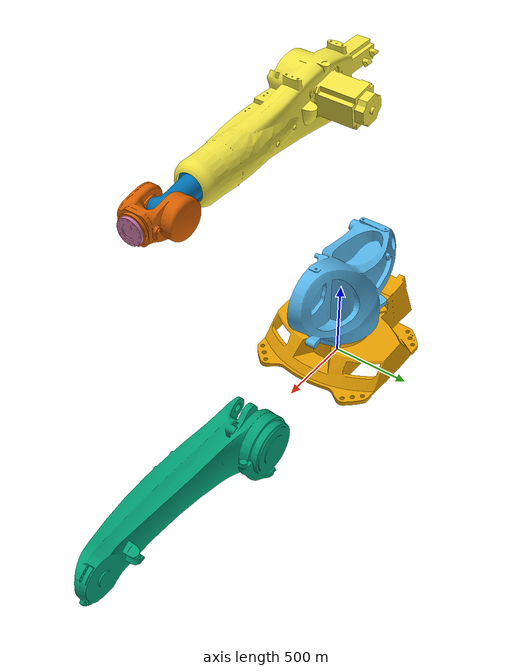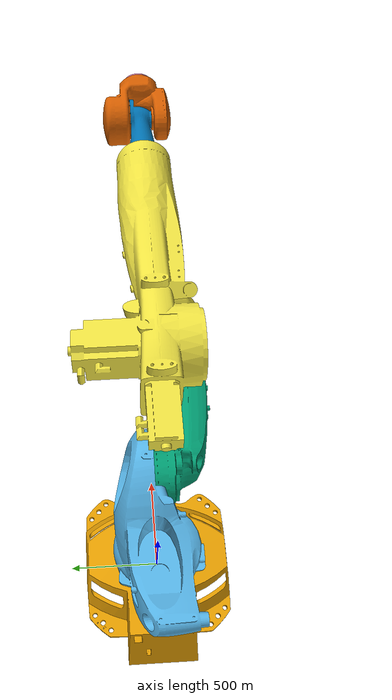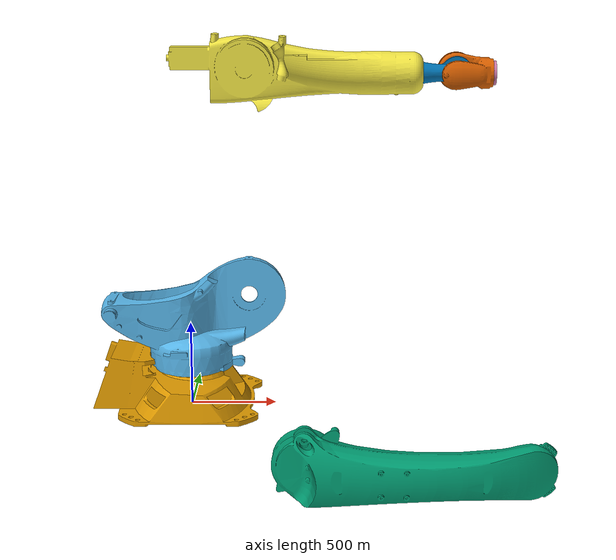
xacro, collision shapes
<?xml version="1.0"?>
<!--Generates a urdf from the macro in kr90r2900_extraha_macro.xacro -->
<robot name="kuka_kr90r2900_extraha" xmlns:xacro="http://wiki.ros.org/xacro">
    <xacro:include filename="$(find kuka_kr90_support)/urdf/kr90r2900_extraha_macro.xacro" />
    <xacro:kuka_kr90r2900_extraha prefix=""/>
</robot>

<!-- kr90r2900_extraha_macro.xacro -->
<robot xmlns:xacro="http://wiki.ros.org/xacro">

  <xacro:property name="DEG2RAD" value="0.017453292519943295"/>

  <xacro:macro name="kuka_kr90r2900_extraha" params="prefix">
    <!-- LINKS -->
    <!-- base link -->
    <link name="${prefix}base_link">
      <visual>
        <origin xyz="0 0 0" rpy="0 0 0"/>
        <geometry>
          <mesh filename="package://kuka_kr90_support/meshes/kr90r2900extraHA/visual/base_link.dae" />
        </geometry>
      </visual>
      <collision>
        <origin xyz="0 0 0" rpy="0 0 0"/>
        <geometry>
          <mesh filename="package://kuka_kr90_support/meshes/kr90r2900extraHA/collision/base_link.stl" />
        </geometry>
      </collision>
    </link>
    <!-- link 1 (A1) -->
    <link name="${prefix}link_1">
      <visual>
        <origin xyz="0 0 -0.675" rpy="0 0 0"/>
        <geometry>
          <mesh filename="package://kuka_kr90_support/meshes/kr90r2900extraHA/visual/link_1.dae" />
        </geometry>
      </visual>
      <collision>
        <origin xyz="0 0 -0.675" rpy="0 0 0"/>
        <geometry>
          <mesh filename="package://kuka_kr90_support/meshes/kr90r2900extraHA/collision/link_1.stl" />
        </geometry>
      </collision>
    </link>
    <!-- link 2 -->
    <link name="${prefix}link_2">
      <visual>
        <origin xyz="-0.675 0 0.35" rpy="0 1.571 0"/>
        <geometry>
          <mesh filename="package://kuka_kr90_support/meshes/kr90r2900extraHA/visual/link_2.dae"/>
        </geometry>
      </visual>
      <collision>
        <origin xyz="-0.675 0 0.35" rpy="0 1.571 0"/>
        <geometry>
          <mesh filename="package://kuka_kr90_support/meshes/kr90r2900extraHA/collision/link_2.stl" />
        </geometry>
      </collision>
    </link>
    <!-- link 3 -->
    <link name="${prefix}link_3">
      <visual>
        <origin xyz="-0.35 0 -2.025" rpy="0 0 0"/>
        <geometry>
          <mesh filename="package://kuka_kr90_support/meshes/kr90r2900extraHA/visual/link_3.dae" />
        </geometry>
      </visual>
      <collision>
        <origin xyz="-0.35 0 -2.025" rpy="0 0 0"/>
        <geometry>
          <mesh filename="package://kuka_kr90_support/meshes/kr90r2900extraHA/collision/link_3.stl" />
        </geometry>
      </collision>
    </link>
    <!-- link 4 -->
    <link name="${prefix}link_4">
      <visual>
        <origin xyz="-0.35 0 -1.984" rpy="0 0 0"/>
        <geometry>
          <mesh filename="package://kuka_kr90_support/meshes/kr90r2900extraHA/visual/link_4.dae" />
        </geometry>
      </visual>
      <collision>
        <origin xyz="-0.35 0 -1.984" rpy="0 0 0"/>
        <geometry>
          <mesh filename="package://kuka_kr90_support/meshes/kr90r2900extraHA/collision/link_4.stl" />
        </geometry>
      </collision>
    </link>
    <!-- link 5 -->
    <link name="${prefix}link_5">
      <visual>
        <origin xyz="-1.55 0 -1.984" rpy="0 0 0"/>
        <geometry>
          <mesh filename="package://kuka_kr90_support/meshes/kr90r2900extraHA/visual/link_5.dae" />
        </geometry>
      </visual>
      <collision>
        <origin xyz="-1.55 0 -1.984" rpy="0 0 0"/>
        <geometry>
          <mesh filename="package://kuka_kr90_support/meshes/kr90r2900extraHA/collision/link_5.stl" />
        </geometry>
      </collision>
    </link>
    <!-- link 6 -->
    <link name="${prefix}link_6">
      <visual>
        <origin xyz="-1.765 0 -1.984" rpy="0 0 0"/>
        <geometry>
          <mesh filename="package://kuka_kr90_support/meshes/kr90r2900extraHA/visual/link_6.dae" />
        </geometry>
      </visual>
      <collision>
        <origin xyz="-1.765 0 -1.984" rpy="0 0 0"/>
        <geometry>
          <mesh filename="package://kuka_kr90_support/meshes/kr90r2900extraHA/collision/link_6.stl" />
        </geometry>
      </collision>
    </link>
    <!-- tool 0 -->
    <!-- This frame corresponds to the $FLANGE coordinate system in KUKA KRC controllers. -->
    <link name="${prefix}tool0">
      <visual>
        <origin xyz="0.0216 0 -0.4853" rpy="${DEG2RAD * 180} 0 0"/>
        <geometry>
          <mesh filename="package://kuka_kr90_support/meshes/kr90r2900extraHA/visual/tocha_cmt_centro.dae" />
        </geometry>
      </visual>
    </link>
    <!-- END LINKS -->

    <!-- JOINTS -->
    <!-- joint 1 (A1) -->
    <joint name="${prefix}joint_a1" type="revolute">
      <origin xyz="0 0 0.675" rpy="0 0 0"/>
      <parent link="${prefix}base_link"/>
      <child link="${prefix}link_1"/>
      <axis xyz="0 0 -1"/>
      <limit effort="0" lower="${-DEG2RAD * 185}" upper="${DEG2RAD * 185}" velocity="${DEG2RAD * 105}"/>
    </joint>
    <!-- joint 2 (A2) -->
    <joint name="${prefix}joint_a2" type="revolute">
      <origin xyz="0.35 0 0" rpy="0 0 0"/>
      <parent link="${prefix}link_1"/>
      <child link="${prefix}link_2"/>
      <axis xyz="0 1 0"/>
      <limit effort="0" lower="${-DEG2RAD * 140}" upper="${DEG2RAD * 140}" velocity="${DEG2RAD * 101}"/>
    </joint>
    <!-- joint 3 (A3) -->
    <joint name="${prefix}joint_a3" type="revolute">
      <origin xyz="1.35 0 0" rpy="0 0 0"/>
      <parent link="${prefix}link_2"/>
      <child link="${prefix}link_3"/>
      <axis xyz="0 1 0"/>
      <limit effort="0" lower="${-DEG2RAD * 120}" upper="${DEG2RAD * 155}" velocity="${DEG2RAD * 107}"/>
    </joint>
    <!-- joint 4 (A4) -->
    <joint name="${prefix}joint_a4" type="revolute">
      <origin xyz="0 0 -0.041" rpy="0 0 0"/>
      <parent link="${prefix}link_3"/>
      <child link="${prefix}link_4"/>
      <axis xyz="-1 0 0"/>
      <limit effort="0" lower="${-DEG2RAD * 350}" upper="${DEG2RAD * 350}" velocity="${DEG2RAD * 292}"/>
    </joint>
    <!-- joint 5 (A5) -->
    <joint name="${prefix}joint_a5" type="revolute">
      <origin xyz="1.2 0 0" rpy="0 0 0"/>
      <parent link="${prefix}link_4"/>
      <child link="${prefix}link_5"/>
      <axis xyz="0 1 0"/>
      <limit effort="0" lower="${-DEG2RAD * 125}" upper="${DEG2RAD * 125}" velocity="${DEG2RAD * 258}"/>
    </joint>
    <!-- joint 6 (A6) -->
    <joint name="${prefix}joint_a6" type="revolute">
      <origin xyz="0.215 0 0" rpy="0 0 0"/>
      <parent link="${prefix}link_5"/>
      <child link="${prefix}link_6"/>
      <axis xyz="-1 0 0"/>
      <limit effort="0" lower="${-DEG2RAD * 350}" upper="${DEG2RAD * 350}" velocity="${DEG2RAD * 284}"/>
    </joint>
    <!-- tool frame - fixed frame -->
    <joint name="${prefix}joint_a6-tool0" type="fixed">
      <parent link="${prefix}link_6"/>
      <child link="${prefix}tool0"/>
      <origin xyz="0.4853 0 0.0216" rpy="0 ${DEG2RAD * 90} 0"/>
      <axis xyz="0 0 -1"/>
    </joint>
    <!-- END JOINTS -->

    <!-- ROS base_link to KUKA $ROBROOT coordinate system transform -->

  </xacro:macro>
</robot>
